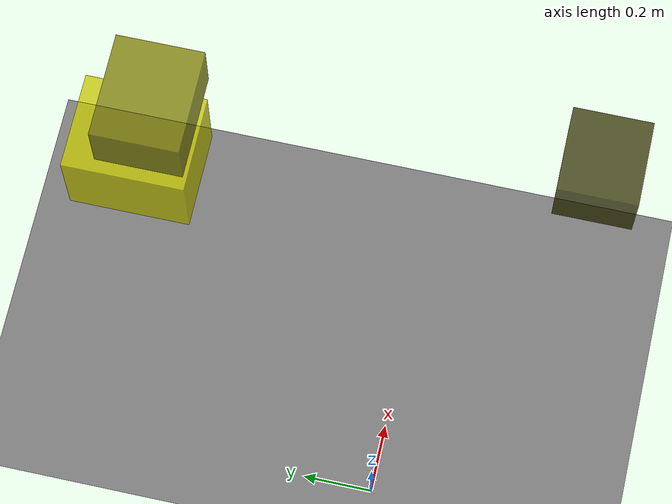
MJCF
<?xml version="1.0"?>
<mujoco model="obstacle_scene">
  <compiler angle="radian" coordinate="local"/>
  <option timestep="0.001" gravity="0 0 -9.81"/>

  <asset>
    <material name="obstacle_mat" rgba="0.8 0.8 0.0 0.8"/>
    <material name="ground_mat" rgba="0.5 0.5 0.5 1"/>
  </asset>

  <worldbody>
    <!-- Ground plane -->
    <geom name="ground" type="plane" size="3 3 0.1" material="ground_mat"/>

    <!-- Obstacles -->
    <body name="obstacle_0" pos="0.680001 -0.451953 1.062125">
      <geom name="obs_0" type="box" size="0.116178 0.105302 0.082646" rgba="0.2 0.2 0.0 0.8"/>
    </body>
    <body name="obstacle_1" pos="0.709588 0.777938 0.804449">
      <geom name="obs_1" type="box" size="0.150598 0.124500 0.084113" rgba="0.5 0.5 0.0 0.8"/>
    </body>
    <body name="obstacle_2" pos="0.715068 0.840635 0.456046">
      <geom name="obs_2" type="box" size="0.141563 0.177031 0.130326" rgba="0.8 0.8 0.0 0.8"/>
    </body>
  </worldbody>
</mujoco>
